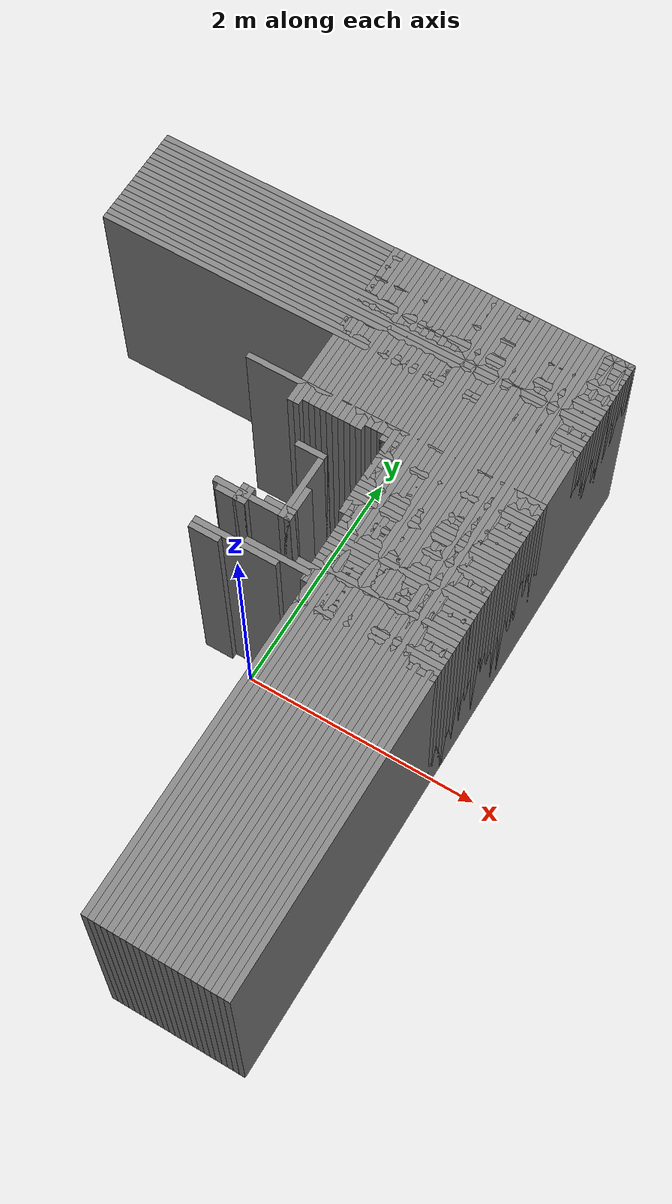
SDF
<sdf version="1.6">
 <model name="maze_map">
  <static>true</static>
  <link name="wall_0">
   <pose>-0.41500000000000004 2.85 1.0 0 0 0</pose>
   <collision name="collision">
    <geometry><box><size>4.1000000000000005 0.05 2.0</size></box></geometry>
   </collision>
   <visual name="visual">
    <geometry><box><size>4.1000000000000005 0.05 2.0</size></box></geometry>
    <material><ambient>0.3 0.3 0.3 1</ambient><diffuse>0.5 0.5 0.5 1</diffuse></material>
   </visual>
  </link>
  <link name="wall_1">
   <pose>-0.41500000000000004 2.8000000000000003 1.0 0 0 0</pose>
   <collision name="collision">
    <geometry><box><size>4.1000000000000005 0.05 2.0</size></box></geometry>
   </collision>
   <visual name="visual">
    <geometry><box><size>4.1000000000000005 0.05 2.0</size></box></geometry>
    <material><ambient>0.3 0.3 0.3 1</ambient><diffuse>0.5 0.5 0.5 1</diffuse></material>
   </visual>
  </link>
  <link name="wall_2">
   <pose>-0.41500000000000004 2.7500000000000004 1.0 0 0 0</pose>
   <collision name="collision">
    <geometry><box><size>4.1000000000000005 0.05 2.0</size></box></geometry>
   </collision>
   <visual name="visual">
    <geometry><box><size>4.1000000000000005 0.05 2.0</size></box></geometry>
    <material><ambient>0.3 0.3 0.3 1</ambient><diffuse>0.5 0.5 0.5 1</diffuse></material>
   </visual>
  </link>
  <link name="wall_3">
   <pose>-0.41500000000000004 2.7000000000000006 1.0 0 0 0</pose>
   <collision name="collision">
    <geometry><box><size>4.1000000000000005 0.05 2.0</size></box></geometry>
   </collision>
   <visual name="visual">
    <geometry><box><size>4.1000000000000005 0.05 2.0</size></box></geometry>
    <material><ambient>0.3 0.3 0.3 1</ambient><diffuse>0.5 0.5 0.5 1</diffuse></material>
   </visual>
  </link>
  <link name="wall_4">
   <pose>-0.41500000000000004 2.650000000000001 1.0 0 0 0</pose>
   <collision name="collision">
    <geometry><box><size>4.1000000000000005 0.05 2.0</size></box></geometry>
   </collision>
   <visual name="visual">
    <geometry><box><size>4.1000000000000005 0.05 2.0</size></box></geometry>
    <material><ambient>0.3 0.3 0.3 1</ambient><diffuse>0.5 0.5 0.5 1</diffuse></material>
   </visual>
  </link>
  <link name="wall_5">
   <pose>-0.41500000000000004 2.6 1.0 0 0 0</pose>
   <collision name="collision">
    <geometry><box><size>4.1000000000000005 0.05 2.0</size></box></geometry>
   </collision>
   <visual name="visual">
    <geometry><box><size>4.1000000000000005 0.05 2.0</size></box></geometry>
    <material><ambient>0.3 0.3 0.3 1</ambient><diffuse>0.5 0.5 0.5 1</diffuse></material>
   </visual>
  </link>
  <link name="wall_6">
   <pose>-0.41500000000000004 2.5500000000000003 1.0 0 0 0</pose>
   <collision name="collision">
    <geometry><box><size>4.1000000000000005 0.05 2.0</size></box></geometry>
   </collision>
   <visual name="visual">
    <geometry><box><size>4.1000000000000005 0.05 2.0</size></box></geometry>
    <material><ambient>0.3 0.3 0.3 1</ambient><diffuse>0.5 0.5 0.5 1</diffuse></material>
   </visual>
  </link>
  <link name="wall_7">
   <pose>-0.41500000000000004 2.5000000000000004 1.0 0 0 0</pose>
   <collision name="collision">
    <geometry><box><size>4.1000000000000005 0.05 2.0</size></box></geometry>
   </collision>
   <visual name="visual">
    <geometry><box><size>4.1000000000000005 0.05 2.0</size></box></geometry>
    <material><ambient>0.3 0.3 0.3 1</ambient><diffuse>0.5 0.5 0.5 1</diffuse></material>
   </visual>
  </link>
  <link name="wall_8">
   <pose>-0.41500000000000004 2.4500000000000006 1.0 0 0 0</pose>
   <collision name="collision">
    <geometry><box><size>4.1000000000000005 0.05 2.0</size></box></geometry>
   </collision>
   <visual name="visual">
    <geometry><box><size>4.1000000000000005 0.05 2.0</size></box></geometry>
    <material><ambient>0.3 0.3 0.3 1</ambient><diffuse>0.5 0.5 0.5 1</diffuse></material>
   </visual>
  </link>
  <link name="wall_9">
   <pose>-0.41500000000000004 2.400000000000001 1.0 0 0 0</pose>
   <collision name="collision">
    <geometry><box><size>4.1000000000000005 0.05 2.0</size></box></geometry>
   </collision>
   <visual name="visual">
    <geometry><box><size>4.1000000000000005 0.05 2.0</size></box></geometry>
    <material><ambient>0.3 0.3 0.3 1</ambient><diffuse>0.5 0.5 0.5 1</diffuse></material>
   </visual>
  </link>
  <link name="wall_10">
   <pose>-0.41500000000000004 2.35 1.0 0 0 0</pose>
   <collision name="collision">
    <geometry><box><size>4.1000000000000005 0.05 2.0</size></box></geometry>
   </collision>
   <visual name="visual">
    <geometry><box><size>4.1000000000000005 0.05 2.0</size></box></geometry>
    <material><ambient>0.3 0.3 0.3 1</ambient><diffuse>0.5 0.5 0.5 1</diffuse></material>
   </visual>
  </link>
  <link name="wall_11">
   <pose>-0.41500000000000004 2.3000000000000003 1.0 0 0 0</pose>
   <collision name="collision">
    <geometry><box><size>4.1000000000000005 0.05 2.0</size></box></geometry>
   </collision>
   <visual name="visual">
    <geometry><box><size>4.1000000000000005 0.05 2.0</size></box></geometry>
    <material><ambient>0.3 0.3 0.3 1</ambient><diffuse>0.5 0.5 0.5 1</diffuse></material>
   </visual>
  </link>
  <link name="wall_12">
   <pose>-0.41500000000000004 2.2500000000000004 1.0 0 0 0</pose>
   <collision name="collision">
    <geometry><box><size>4.1000000000000005 0.05 2.0</size></box></geometry>
   </collision>
   <visual name="visual">
    <geometry><box><size>4.1000000000000005 0.05 2.0</size></box></geometry>
    <material><ambient>0.3 0.3 0.3 1</ambient><diffuse>0.5 0.5 0.5 1</diffuse></material>
   </visual>
  </link>
  <link name="wall_13">
   <pose>-0.41500000000000004 2.2000000000000006 1.0 0 0 0</pose>
   <collision name="collision">
    <geometry><box><size>4.1000000000000005 0.05 2.0</size></box></geometry>
   </collision>
   <visual name="visual">
    <geometry><box><size>4.1000000000000005 0.05 2.0</size></box></geometry>
    <material><ambient>0.3 0.3 0.3 1</ambient><diffuse>0.5 0.5 0.5 1</diffuse></material>
   </visual>
  </link>
  <link name="wall_14">
   <pose>-0.41500000000000004 2.150000000000001 1.0 0 0 0</pose>
   <collision name="collision">
    <geometry><box><size>4.1000000000000005 0.05 2.0</size></box></geometry>
   </collision>
   <visual name="visual">
    <geometry><box><size>4.1000000000000005 0.05 2.0</size></box></geometry>
    <material><ambient>0.3 0.3 0.3 1</ambient><diffuse>0.5 0.5 0.5 1</diffuse></material>
   </visual>
  </link>
  <link name="wall_15">
   <pose>-0.41500000000000004 2.1 1.0 0 0 0</pose>
   <collision name="collision">
    <geometry><box><size>4.1000000000000005 0.05 2.0</size></box></geometry>
   </collision>
   <visual name="visual">
    <geometry><box><size>4.1000000000000005 0.05 2.0</size></box></geometry>
    <material><ambient>0.3 0.3 0.3 1</ambient><diffuse>0.5 0.5 0.5 1</diffuse></material>
   </visual>
  </link>
  <link name="wall_16">
   <pose>-0.41500000000000004 2.0500000000000003 1.0 0 0 0</pose>
   <collision name="collision">
    <geometry><box><size>4.1000000000000005 0.05 2.0</size></box></geometry>
   </collision>
   <visual name="visual">
    <geometry><box><size>4.1000000000000005 0.05 2.0</size></box></geometry>
    <material><ambient>0.3 0.3 0.3 1</ambient><diffuse>0.5 0.5 0.5 1</diffuse></material>
   </visual>
  </link>
  <link name="wall_17">
   <pose>-0.41500000000000004 2.0000000000000004 1.0 0 0 0</pose>
   <collision name="collision">
    <geometry><box><size>4.1000000000000005 0.05 2.0</size></box></geometry>
   </collision>
   <visual name="visual">
    <geometry><box><size>4.1000000000000005 0.05 2.0</size></box></geometry>
    <material><ambient>0.3 0.3 0.3 1</ambient><diffuse>0.5 0.5 0.5 1</diffuse></material>
   </visual>
  </link>
  <link name="wall_28">
   <pose>0.38500000000000023 1.5000000000000004 1.0 0 0 0</pose>
   <collision name="collision"><geometry><box><size>2.5 0.05 2.0</size></box></geometry></collision>
   <visual name="visual">
    <geometry><box><size>2.5 0.05 2.0</size></box></geometry>
    <material><ambient>0.3 0.3 0.3 1</ambient><diffuse>0.5 0.5 0.5 1</diffuse></material>
   </visual>
  </link>
  <link name="wall_31">
   <pose>0.9850000000000003 1.4 1.0 0 0 0</pose>
   <collision name="collision"><geometry><box><size>1.3 0.05 2.0</size></box></geometry></collision>
   <visual name="visual">
    <geometry><box><size>1.3 0.05 2.0</size></box></geometry>
    <material><ambient>0.3 0.3 0.3 1</ambient><diffuse>0.5 0.5 0.5 1</diffuse></material>
   </visual>
  </link>
  <link name="wall_34">
   <pose>1.0100000000000002 1.35 1.0 0 0 0</pose>
   <collision name="collision"><geometry><box><size>1.25 0.05 2.0</size></box></geometry></collision>
   <visual name="visual">
    <geometry><box><size>1.25 0.05 2.0</size></box></geometry>
    <material><ambient>0.3 0.3 0.3 1</ambient><diffuse>0.5 0.5 0.5 1</diffuse></material>
   </visual>
  </link>
  <link name="wall_36">
   <pose>1.0100000000000002 1.3000000000000003 1.0 0 0 0</pose>
   <collision name="collision"><geometry><box><size>1.25 0.05 2.0</size></box></geometry></collision>
   <visual name="visual">
    <geometry><box><size>1.25 0.05 2.0</size></box></geometry>
    <material><ambient>0.3 0.3 0.3 1</ambient><diffuse>0.5 0.5 0.5 1</diffuse></material>
   </visual>
  </link>
  <link name="wall_38">
   <pose>1.0100000000000002 1.2500000000000004 1.0 0 0 0</pose>
   <collision name="collision"><geometry><box><size>1.25 0.05 2.0</size></box></geometry></collision>
   <visual name="visual">
    <geometry><box><size>1.25 0.05 2.0</size></box></geometry>
    <material><ambient>0.3 0.3 0.3 1</ambient><diffuse>0.5 0.5 0.5 1</diffuse></material>
   </visual>
  </link>
  <link name="wall_40">
   <pose>1.0100000000000002 1.2000000000000002 1.0 0 0 0</pose>
   <collision name="collision"><geometry><box><size>1.25 0.05 2.0</size></box></geometry></collision>
   <visual name="visual">
    <geometry><box><size>1.25 0.05 2.0</size></box></geometry>
    <material><ambient>0.3 0.3 0.3 1</ambient><diffuse>0.5 0.5 0.5 1</diffuse></material>
   </visual>
  </link>
  <link name="wall_42">
   <pose>1.0100000000000002 1.1500000000000004 1.0 0 0 0</pose>
   <collision name="collision"><geometry><box><size>1.25 0.05 2.0</size></box></geometry></collision>
   <visual name="visual">
    <geometry><box><size>1.25 0.05 2.0</size></box></geometry>
    <material><ambient>0.3 0.3 0.3 1</ambient><diffuse>0.5 0.5 0.5 1</diffuse></material>
   </visual>
  </link>
  <link name="wall_44">
   <pose>1.0100000000000002 1.1 1.0 0 0 0</pose>
   <collision name="collision"><geometry><box><size>1.25 0.05 2.0</size></box></geometry></collision>
   <visual name="visual">
    <geometry><box><size>1.25 0.05 2.0</size></box></geometry>
    <material><ambient>0.3 0.3 0.3 1</ambient><diffuse>0.5 0.5 0.5 1</diffuse></material>
   </visual>
  </link>
  <link name="wall_46">
   <pose>-0.03999999999999959 1.0500000000000003 1.0 0 0 0</pose>
   <collision name="collision"><geometry><box><size>0.25 0.05 2.0</size></box></geometry></collision>
   <visual name="visual">
    <geometry><box><size>0.25 0.05 2.0</size></box></geometry>
    <material><ambient>0.3 0.3 0.3 1</ambient><diffuse>0.5 0.5 0.5 1</diffuse></material>
   </visual>
  </link>
  <link name="wall_47">
   <pose>1.0100000000000002 1.0500000000000003 1.0 0 0 0</pose>
   <collision name="collision"><geometry><box><size>1.25 0.05 2.0</size></box></geometry></collision>
   <visual name="visual">
    <geometry><box><size>1.25 0.05 2.0</size></box></geometry>
    <material><ambient>0.3 0.3 0.3 1</ambient><diffuse>0.5 0.5 0.5 1</diffuse></material>
   </visual>
  </link>
  <link name="wall_49">
   <pose>1.0100000000000002 1.0000000000000004 1.0 0 0 0</pose>
   <collision name="collision"><geometry><box><size>1.25 0.05 2.0</size></box></geometry></collision>
   <visual name="visual">
    <geometry><box><size>1.25 0.05 2.0</size></box></geometry>
    <material><ambient>0.3 0.3 0.3 1</ambient><diffuse>0.5 0.5 0.5 1</diffuse></material>
   </visual>
  </link>
  <link name="wall_51">
   <pose>1.0100000000000002 0.9500000000000002 1.0 0 0 0</pose>
   <collision name="collision"><geometry><box><size>1.25 0.05 2.0</size></box></geometry></collision>
   <visual name="visual">
    <geometry><box><size>1.25 0.05 2.0</size></box></geometry>
    <material><ambient>0.3 0.3 0.3 1</ambient><diffuse>0.5 0.5 0.5 1</diffuse></material>
   </visual>
  </link>
  <link name="wall_53">
   <pose>1.0100000000000002 0.9000000000000004 1.0 0 0 0</pose>
   <collision name="collision"><geometry><box><size>1.25 0.05 2.0</size></box></geometry></collision>
   <visual name="visual">
    <geometry><box><size>1.25 0.05 2.0</size></box></geometry>
    <material><ambient>0.3 0.3 0.3 1</ambient><diffuse>0.5 0.5 0.5 1</diffuse></material>
   </visual>
  </link>
  <link name="wall_56">
   <pose>1.0100000000000002 0.8500000000000001 1.0 0 0 0</pose>
   <collision name="collision"><geometry><box><size>1.25 0.05 2.0</size></box></geometry></collision>
   <visual name="visual">
    <geometry><box><size>1.25 0.05 2.0</size></box></geometry>
    <material><ambient>0.3 0.3 0.3 1</ambient><diffuse>0.5 0.5 0.5 1</diffuse></material>
   </visual>
  </link>
  <link name="wall_59">
   <pose>1.0100000000000002 0.8000000000000003 1.0 0 0 0</pose>
   <collision name="collision"><geometry><box><size>1.25 0.05 2.0</size></box></geometry></collision>
   <visual name="visual">
    <geometry><box><size>1.25 0.05 2.0</size></box></geometry>
    <material><ambient>0.3 0.3 0.3 1</ambient><diffuse>0.5 0.5 0.5 1</diffuse></material>
   </visual>
  </link>
  <link name="wall_61">
   <pose>1.0100000000000002 0.7500000000000004 1.0 0 0 0</pose>
   <collision name="collision"><geometry><box><size>1.25 0.05 2.0</size></box></geometry></collision>
   <visual name="visual">
    <geometry><box><size>1.25 0.05 2.0</size></box></geometry>
    <material><ambient>0.3 0.3 0.3 1</ambient><diffuse>0.5 0.5 0.5 1</diffuse></material>
   </visual>
  </link>
  <link name="wall_63">
   <pose>1.0350000000000001 0.7000000000000002 1.0 0 0 0</pose>
   <collision name="collision">
    <geometry><box><size>1.2000000000000002 0.05 2.0</size></box></geometry>
   </collision>
   <visual name="visual">
    <geometry><box><size>1.2000000000000002 0.05 2.0</size></box></geometry>
    <material><ambient>0.3 0.3 0.3 1</ambient><diffuse>0.5 0.5 0.5 1</diffuse></material>
   </visual>
  </link>
  <link name="wall_65">
   <pose>1.0350000000000001 0.6500000000000004 1.0 0 0 0</pose>
   <collision name="collision">
    <geometry><box><size>1.2000000000000002 0.05 2.0</size></box></geometry>
   </collision>
   <visual name="visual">
    <geometry><box><size>1.2000000000000002 0.05 2.0</size></box></geometry>
    <material><ambient>0.3 0.3 0.3 1</ambient><diffuse>0.5 0.5 0.5 1</diffuse></material>
   </visual>
  </link>
  <link name="wall_67">
   <pose>1.0350000000000001 0.6000000000000001 1.0 0 0 0</pose>
   <collision name="collision">
    <geometry><box><size>1.2000000000000002 0.05 2.0</size></box></geometry>
   </collision>
   <visual name="visual">
    <geometry><box><size>1.2000000000000002 0.05 2.0</size></box></geometry>
    <material><ambient>0.3 0.3 0.3 1</ambient><diffuse>0.5 0.5 0.5 1</diffuse></material>
   </visual>
  </link>
  <link name="wall_69">
   <pose>0.010000000000000231 0.5500000000000003 1.0 0 0 0</pose>
   <collision name="collision"><geometry><box><size>0.25 0.05 2.0</size></box></geometry></collision>
   <visual name="visual">
    <geometry><box><size>0.25 0.05 2.0</size></box></geometry>
    <material><ambient>0.3 0.3 0.3 1</ambient><diffuse>0.5 0.5 0.5 1</diffuse></material>
   </visual>
  </link>
  <link name="wall_70">
   <pose>1.0350000000000001 0.5500000000000003 1.0 0 0 0</pose>
   <collision name="collision">
    <geometry><box><size>1.2000000000000002 0.05 2.0</size></box></geometry>
   </collision>
   <visual name="visual">
    <geometry><box><size>1.2000000000000002 0.05 2.0</size></box></geometry>
    <material><ambient>0.3 0.3 0.3 1</ambient><diffuse>0.5 0.5 0.5 1</diffuse></material>
   </visual>
  </link>
  <link name="wall_72">
   <pose>-0.18999999999999995 0.5000000000000004 1.0 0 0 0</pose>
   <collision name="collision"><geometry><box><size>0.65 0.05 2.0</size></box></geometry></collision>
   <visual name="visual">
    <geometry><box><size>0.65 0.05 2.0</size></box></geometry>
    <material><ambient>0.3 0.3 0.3 1</ambient><diffuse>0.5 0.5 0.5 1</diffuse></material>
   </visual>
  </link>
  <link name="wall_73">
   <pose>1.0350000000000001 0.5000000000000004 1.0 0 0 0</pose>
   <collision name="collision">
    <geometry><box><size>1.2000000000000002 0.05 2.0</size></box></geometry>
   </collision>
   <visual name="visual">
    <geometry><box><size>1.2000000000000002 0.05 2.0</size></box></geometry>
    <material><ambient>0.3 0.3 0.3 1</ambient><diffuse>0.5 0.5 0.5 1</diffuse></material>
   </visual>
  </link>
  <link name="wall_75">
   <pose>-0.33999999999999986 0.4500000000000002 1.0 0 0 0</pose>
   <collision name="collision"><geometry><box><size>0.25 0.05 2.0</size></box></geometry></collision>
   <visual name="visual">
    <geometry><box><size>0.25 0.05 2.0</size></box></geometry>
    <material><ambient>0.3 0.3 0.3 1</ambient><diffuse>0.5 0.5 0.5 1</diffuse></material>
   </visual>
  </link>
  <link name="wall_76">
   <pose>1.0350000000000001 0.4500000000000002 1.0 0 0 0</pose>
   <collision name="collision">
    <geometry><box><size>1.2000000000000002 0.05 2.0</size></box></geometry>
   </collision>
   <visual name="visual">
    <geometry><box><size>1.2000000000000002 0.05 2.0</size></box></geometry>
    <material><ambient>0.3 0.3 0.3 1</ambient><diffuse>0.5 0.5 0.5 1</diffuse></material>
   </visual>
  </link>
  <link name="wall_79">
   <pose>1.0350000000000001 0.40000000000000036 1.0 0 0 0</pose>
   <collision name="collision">
    <geometry><box><size>1.2000000000000002 0.05 2.0</size></box></geometry>
   </collision>
   <visual name="visual">
    <geometry><box><size>1.2000000000000002 0.05 2.0</size></box></geometry>
    <material><ambient>0.3 0.3 0.3 1</ambient><diffuse>0.5 0.5 0.5 1</diffuse></material>
   </visual>
  </link>
  <link name="wall_81">
   <pose>1.0350000000000001 0.3500000000000001 1.0 0 0 0</pose>
   <collision name="collision">
    <geometry><box><size>1.2000000000000002 0.05 2.0</size></box></geometry>
   </collision>
   <visual name="visual">
    <geometry><box><size>1.2000000000000002 0.05 2.0</size></box></geometry>
    <material><ambient>0.3 0.3 0.3 1</ambient><diffuse>0.5 0.5 0.5 1</diffuse></material>
   </visual>
  </link>
  <link name="wall_83">
   <pose>1.0350000000000001 0.30000000000000027 1.0 0 0 0</pose>
   <collision name="collision">
    <geometry><box><size>1.2000000000000002 0.05 2.0</size></box></geometry>
   </collision>
   <visual name="visual">
    <geometry><box><size>1.2000000000000002 0.05 2.0</size></box></geometry>
    <material><ambient>0.3 0.3 0.3 1</ambient><diffuse>0.5 0.5 0.5 1</diffuse></material>
   </visual>
  </link>
  <link name="wall_85">
   <pose>0.9850000000000003 0.25000000000000044 1.0 0 0 0</pose>
   <collision name="collision"><geometry><box><size>1.3 0.05 2.0</size></box></geometry></collision>
   <visual name="visual">
    <geometry><box><size>1.3 0.05 2.0</size></box></geometry>
    <material><ambient>0.3 0.3 0.3 1</ambient><diffuse>0.5 0.5 0.5 1</diffuse></material>
   </visual>
  </link>
  <link name="wall_87">
   <pose>0.7850000000000001 0.20000000000000018 1.0 0 0 0</pose>
   <collision name="collision">
    <geometry><box><size>1.7000000000000002 0.05 2.0</size></box></geometry>
   </collision>
   <visual name="visual">
    <geometry><box><size>1.7000000000000002 0.05 2.0</size></box></geometry>
    <material><ambient>0.3 0.3 0.3 1</ambient><diffuse>0.5 0.5 0.5 1</diffuse></material>
   </visual>
  </link>
  <link name="wall_89">
   <pose>-0.11499999999999977 0.15000000000000036 1.0 0 0 0</pose>
   <collision name="collision">
    <geometry><box><size>0.7000000000000001 0.05 2.0</size></box></geometry>
   </collision>
   <visual name="visual">
    <geometry><box><size>0.7000000000000001 0.05 2.0</size></box></geometry>
    <material><ambient>0.3 0.3 0.3 1</ambient><diffuse>0.5 0.5 0.5 1</diffuse></material>
   </visual>
  </link>
  <link name="wall_90">
   <pose>1.0350000000000001 0.15000000000000036 1.0 0 0 0</pose>
   <collision name="collision">
    <geometry><box><size>1.2000000000000002 0.05 2.0</size></box></geometry>
   </collision>
   <visual name="visual">
    <geometry><box><size>1.2000000000000002 0.05 2.0</size></box></geometry>
    <material><ambient>0.3 0.3 0.3 1</ambient><diffuse>0.5 0.5 0.5 1</diffuse></material>
   </visual>
  </link>
  <link name="wall_92">
   <pose>-0.33999999999999986 0.10000000000000009 1.0 0 0 0</pose>
   <collision name="collision"><geometry><box><size>0.25 0.05 2.0</size></box></geometry></collision>
   <visual name="visual">
    <geometry><box><size>0.25 0.05 2.0</size></box></geometry>
    <material><ambient>0.3 0.3 0.3 1</ambient><diffuse>0.5 0.5 0.5 1</diffuse></material>
   </visual>
  </link>
  <link name="wall_93">
   <pose>1.06 0.10000000000000009 1.0 0 0 0</pose>
   <collision name="collision">
    <geometry><box><size>1.1500000000000001 0.05 2.0</size></box></geometry>
   </collision>
   <visual name="visual">
    <geometry><box><size>1.1500000000000001 0.05 2.0</size></box></geometry>
    <material><ambient>0.3 0.3 0.3 1</ambient><diffuse>0.5 0.5 0.5 1</diffuse></material>
   </visual>
  </link>
  <link name="wall_95">
   <pose>1.06 0.050000000000000266 1.0 0 0 0</pose>
   <collision name="collision">
    <geometry><box><size>1.1500000000000001 0.05 2.0</size></box></geometry>
   </collision>
   <visual name="visual">
    <geometry><box><size>1.1500000000000001 0.05 2.0</size></box></geometry>
    <material><ambient>0.3 0.3 0.3 1</ambient><diffuse>0.5 0.5 0.5 1</diffuse></material>
   </visual>
  </link>
  <link name="wall_97">
   <pose>1.06 4.440892098500626e-16 1.0 0 0 0</pose>
   <collision name="collision">
    <geometry><box><size>1.1500000000000001 0.05 2.0</size></box></geometry>
   </collision>
   <visual name="visual">
    <geometry><box><size>1.1500000000000001 0.05 2.0</size></box></geometry>
    <material><ambient>0.3 0.3 0.3 1</ambient><diffuse>0.5 0.5 0.5 1</diffuse></material>
   </visual>
  </link>
  <link name="wall_99">
   <pose>1.06 -0.04999999999999982 1.0 0 0 0</pose>
   <collision name="collision">
    <geometry><box><size>1.1500000000000001 0.05 2.0</size></box></geometry>
   </collision>
   <visual name="visual">
    <geometry><box><size>1.1500000000000001 0.05 2.0</size></box></geometry>
    <material><ambient>0.3 0.3 0.3 1</ambient><diffuse>0.5 0.5 0.5 1</diffuse></material>
   </visual>
  </link>
  <link name="wall_242">
   <pose>-0.3899999999999997 2.1 1.0 0 0 0</pose>
   <collision name="collision"><geometry><box><size>0.05 1.55 2.0</size></box></geometry></collision>
   <visual name="visual">
    <geometry><box><size>0.05 1.55 2.0</size></box></geometry>
    <material><ambient>0.3 0.3 0.3 1</ambient><diffuse>0.5 0.5 0.5 1</diffuse></material>
   </visual>
  </link>
  <link name="wall_244">
   <pose>-0.33999999999999986 2.1 1.0 0 0 0</pose>
   <collision name="collision"><geometry><box><size>0.05 1.55 2.0</size></box></geometry></collision>
   <visual name="visual">
    <geometry><box><size>0.05 1.55 2.0</size></box></geometry>
    <material><ambient>0.3 0.3 0.3 1</ambient><diffuse>0.5 0.5 0.5 1</diffuse></material>
   </visual>
  </link>
  <link name="wall_246">
   <pose>-0.29000000000000004 2.1250000000000004 1.0 0 0 0</pose>
   <collision name="collision"><geometry><box><size>0.05 1.5 2.0</size></box></geometry></collision>
   <visual name="visual">
    <geometry><box><size>0.05 1.5 2.0</size></box></geometry>
    <material><ambient>0.3 0.3 0.3 1</ambient><diffuse>0.5 0.5 0.5 1</diffuse></material>
   </visual>
  </link>
  <link name="wall_247">
   <pose>-0.29000000000000004 0.5000000000000004 1.0 0 0 0</pose>
   <collision name="collision">
    <geometry><box><size>0.05 0.15000000000000002 2.0</size></box></geometry>
   </collision>
   <visual name="visual">
    <geometry><box><size>0.05 0.15000000000000002 2.0</size></box></geometry>
    <material><ambient>0.3 0.3 0.3 1</ambient><diffuse>0.5 0.5 0.5 1</diffuse></material>
   </visual>
  </link>
  <link name="wall_249">
   <pose>-0.23999999999999977 2.1250000000000004 1.0 0 0 0</pose>
   <collision name="collision"><geometry><box><size>0.05 1.5 2.0</size></box></geometry></collision>
   <visual name="visual">
    <geometry><box><size>0.05 1.5 2.0</size></box></geometry>
    <material><ambient>0.3 0.3 0.3 1</ambient><diffuse>0.5 0.5 0.5 1</diffuse></material>
   </visual>
  </link>
  <link name="wall_250">
   <pose>-0.23999999999999977 0.5000000000000004 1.0 0 0 0</pose>
   <collision name="collision">
    <geometry><box><size>0.05 0.15000000000000002 2.0</size></box></geometry>
   </collision>
   <visual name="visual">
    <geometry><box><size>0.05 0.15000000000000002 2.0</size></box></geometry>
    <material><ambient>0.3 0.3 0.3 1</ambient><diffuse>0.5 0.5 0.5 1</diffuse></material>
   </visual>
  </link>
  <link name="wall_252">
   <pose>-0.18999999999999995 2.1250000000000004 1.0 0 0 0</pose>
   <collision name="collision"><geometry><box><size>0.05 1.5 2.0</size></box></geometry></collision>
   <visual name="visual">
    <geometry><box><size>0.05 1.5 2.0</size></box></geometry>
    <material><ambient>0.3 0.3 0.3 1</ambient><diffuse>0.5 0.5 0.5 1</diffuse></material>
   </visual>
  </link>
  <link name="wall_254">
   <pose>-0.13999999999999968 2.1250000000000004 1.0 0 0 0</pose>
   <collision name="collision"><geometry><box><size>0.05 1.5 2.0</size></box></geometry></collision>
   <visual name="visual">
    <geometry><box><size>0.05 1.5 2.0</size></box></geometry>
    <material><ambient>0.3 0.3 0.3 1</ambient><diffuse>0.5 0.5 0.5 1</diffuse></material>
   </visual>
  </link>
  <link name="wall_256">
   <pose>-0.08999999999999986 2.1250000000000004 1.0 0 0 0</pose>
   <collision name="collision"><geometry><box><size>0.05 1.5 2.0</size></box></geometry></collision>
   <visual name="visual">
    <geometry><box><size>0.05 1.5 2.0</size></box></geometry>
    <material><ambient>0.3 0.3 0.3 1</ambient><diffuse>0.5 0.5 0.5 1</diffuse></material>
   </visual>
  </link>
  <link name="wall_258">
   <pose>-0.03999999999999959 2.1250000000000004 1.0 0 0 0</pose>
   <collision name="collision"><geometry><box><size>0.05 1.5 2.0</size></box></geometry></collision>
   <visual name="visual">
    <geometry><box><size>0.05 1.5 2.0</size></box></geometry>
    <material><ambient>0.3 0.3 0.3 1</ambient><diffuse>0.5 0.5 0.5 1</diffuse></material>
   </visual>
  </link>
  <link name="wall_260">
   <pose>0.010000000000000231 2.1250000000000004 1.0 0 0 0</pose>
   <collision name="collision"><geometry><box><size>0.05 1.5 2.0</size></box></geometry></collision>
   <visual name="visual">
    <geometry><box><size>0.05 1.5 2.0</size></box></geometry>
    <material><ambient>0.3 0.3 0.3 1</ambient><diffuse>0.5 0.5 0.5 1</diffuse></material>
   </visual>
  </link>
  <link name="wall_262">
   <pose>0.06000000000000005 2.1250000000000004 1.0 0 0 0</pose>
   <collision name="collision"><geometry><box><size>0.05 1.5 2.0</size></box></geometry></collision>
   <visual name="visual">
    <geometry><box><size>0.05 1.5 2.0</size></box></geometry>
    <material><ambient>0.3 0.3 0.3 1</ambient><diffuse>0.5 0.5 0.5 1</diffuse></material>
   </visual>
  </link>
  <link name="wall_263">
   <pose>0.06000000000000005 0.7750000000000004 1.0 0 0 0</pose>
   <collision name="collision">
    <geometry><box><size>0.05 0.6000000000000001 2.0</size></box></geometry>
   </collision>
   <visual name="visual">
    <geometry><box><size>0.05 0.6000000000000001 2.0</size></box></geometry>
    <material><ambient>0.3 0.3 0.3 1</ambient><diffuse>0.5 0.5 0.5 1</diffuse></material>
   </visual>
  </link>
  <link name="wall_265">
   <pose>0.11000000000000032 2.1250000000000004 1.0 0 0 0</pose>
   <collision name="collision"><geometry><box><size>0.05 1.5 2.0</size></box></geometry></collision>
   <visual name="visual">
    <geometry><box><size>0.05 1.5 2.0</size></box></geometry>
    <material><ambient>0.3 0.3 0.3 1</ambient><diffuse>0.5 0.5 0.5 1</diffuse></material>
   </visual>
  </link>
  <link name="wall_266">
   <pose>0.11000000000000032 0.6250000000000004 1.0 0 0 0</pose>
   <collision name="collision">
    <geometry><box><size>0.05 0.30000000000000004 2.0</size></box></geometry>
   </collision>
   <visual name="visual">
    <geometry><box><size>0.05 0.30000000000000004 2.0</size></box></geometry>
    <material><ambient>0.3 0.3 0.3 1</ambient><diffuse>0.5 0.5 0.5 1</diffuse></material>
   </visual>
  </link>
  <link name="wall_268">
   <pose>0.16000000000000014 2.1250000000000004 1.0 0 0 0</pose>
   <collision name="collision"><geometry><box><size>0.05 1.5 2.0</size></box></geometry></collision>
   <visual name="visual">
    <geometry><box><size>0.05 1.5 2.0</size></box></geometry>
    <material><ambient>0.3 0.3 0.3 1</ambient><diffuse>0.5 0.5 0.5 1</diffuse></material>
   </visual>
  </link>
  <link name="wall_270">
   <pose>0.2100000000000004 2.150000000000001 1.0 0 0 0</pose>
   <collision name="collision">
    <geometry><box><size>0.05 1.4500000000000002 2.0</size></box></geometry>
   </collision>
   <visual name="visual">
    <geometry><box><size>0.05 1.4500000000000002 2.0</size></box></geometry>
    <material><ambient>0.3 0.3 0.3 1</ambient><diffuse>0.5 0.5 0.5 1</diffuse></material>
   </visual>
  </link>
  <link name="wall_272">
   <pose>0.26000000000000023 2.150000000000001 1.0 0 0 0</pose>
   <collision name="collision">
    <geometry><box><size>0.05 1.4500000000000002 2.0</size></box></geometry>
   </collision>
   <visual name="visual">
    <geometry><box><size>0.05 1.4500000000000002 2.0</size></box></geometry>
    <material><ambient>0.3 0.3 0.3 1</ambient><diffuse>0.5 0.5 0.5 1</diffuse></material>
   </visual>
  </link>
  <link name="wall_274">
   <pose>0.31000000000000005 2.150000000000001 1.0 0 0 0</pose>
   <collision name="collision">
    <geometry><box><size>0.05 1.4500000000000002 2.0</size></box></geometry>
   </collision>
   <visual name="visual">
    <geometry><box><size>0.05 1.4500000000000002 2.0</size></box></geometry>
    <material><ambient>0.3 0.3 0.3 1</ambient><diffuse>0.5 0.5 0.5 1</diffuse></material>
   </visual>
  </link>
  <link name="wall_276">
   <pose>0.3600000000000003 2.1250000000000004 1.0 0 0 0</pose>
   <collision name="collision"><geometry><box><size>0.05 1.5 2.0</size></box></geometry></collision>
   <visual name="visual">
    <geometry><box><size>0.05 1.5 2.0</size></box></geometry>
    <material><ambient>0.3 0.3 0.3 1</ambient><diffuse>0.5 0.5 0.5 1</diffuse></material>
   </visual>
  </link>
  <link name="wall_278">
   <pose>0.41000000000000014 1.8000000000000003 1.0 0 0 0</pose>
   <collision name="collision"><geometry><box><size>0.05 2.15 2.0</size></box></geometry></collision>
   <visual name="visual">
    <geometry><box><size>0.05 2.15 2.0</size></box></geometry>
    <material><ambient>0.3 0.3 0.3 1</ambient><diffuse>0.5 0.5 0.5 1</diffuse></material>
   </visual>
  </link>
  <link name="wall_280">
   <pose>0.4600000000000004 1.5000000000000004 1.0 0 0 0</pose>
   <collision name="collision"><geometry><box><size>0.05 2.75 2.0</size></box></geometry></collision>
   <visual name="visual">
    <geometry><box><size>0.05 2.75 2.0</size></box></geometry>
    <material><ambient>0.3 0.3 0.3 1</ambient><diffuse>0.5 0.5 0.5 1</diffuse></material>
   </visual>
  </link>
  <link name="wall_282">
   <pose>0.5100000000000002 0.10000000000000009 1.0 0 0 0</pose>
   <collision name="collision">
    <geometry><box><size>0.05 5.550000000000001 2.0</size></box></geometry>
   </collision>
   <visual name="visual">
    <geometry><box><size>0.05 5.550000000000001 2.0</size></box></geometry>
    <material><ambient>0.3 0.3 0.3 1</ambient><diffuse>0.5 0.5 0.5 1</diffuse></material>
   </visual>
  </link>
  <link name="wall_283">
   <pose>0.56 0.10000000000000009 1.0 0 0 0</pose>
   <collision name="collision">
    <geometry><box><size>0.05 5.550000000000001 2.0</size></box></geometry>
   </collision>
   <visual name="visual">
    <geometry><box><size>0.05 5.550000000000001 2.0</size></box></geometry>
    <material><ambient>0.3 0.3 0.3 1</ambient><diffuse>0.5 0.5 0.5 1</diffuse></material>
   </visual>
  </link>
  <link name="wall_284">
   <pose>0.6100000000000003 0.10000000000000009 1.0 0 0 0</pose>
   <collision name="collision">
    <geometry><box><size>0.05 5.550000000000001 2.0</size></box></geometry>
   </collision>
   <visual name="visual">
    <geometry><box><size>0.05 5.550000000000001 2.0</size></box></geometry>
    <material><ambient>0.3 0.3 0.3 1</ambient><diffuse>0.5 0.5 0.5 1</diffuse></material>
   </visual>
  </link>
  <link name="wall_285">
   <pose>0.6600000000000001 0.10000000000000009 1.0 0 0 0</pose>
   <collision name="collision">
    <geometry><box><size>0.05 5.550000000000001 2.0</size></box></geometry>
   </collision>
   <visual name="visual">
    <geometry><box><size>0.05 5.550000000000001 2.0</size></box></geometry>
    <material><ambient>0.3 0.3 0.3 1</ambient><diffuse>0.5 0.5 0.5 1</diffuse></material>
   </visual>
  </link>
  <link name="wall_286">
   <pose>0.7100000000000004 0.10000000000000009 1.0 0 0 0</pose>
   <collision name="collision">
    <geometry><box><size>0.05 5.550000000000001 2.0</size></box></geometry>
   </collision>
   <visual name="visual">
    <geometry><box><size>0.05 5.550000000000001 2.0</size></box></geometry>
    <material><ambient>0.3 0.3 0.3 1</ambient><diffuse>0.5 0.5 0.5 1</diffuse></material>
   </visual>
  </link>
  <link name="wall_287">
   <pose>0.7600000000000002 0.10000000000000009 1.0 0 0 0</pose>
   <collision name="collision">
    <geometry><box><size>0.05 5.550000000000001 2.0</size></box></geometry>
   </collision>
   <visual name="visual">
    <geometry><box><size>0.05 5.550000000000001 2.0</size></box></geometry>
    <material><ambient>0.3 0.3 0.3 1</ambient><diffuse>0.5 0.5 0.5 1</diffuse></material>
   </visual>
  </link>
  <link name="wall_288">
   <pose>0.81 0.10000000000000009 1.0 0 0 0</pose>
   <collision name="collision">
    <geometry><box><size>0.05 5.550000000000001 2.0</size></box></geometry>
   </collision>
   <visual name="visual">
    <geometry><box><size>0.05 5.550000000000001 2.0</size></box></geometry>
    <material><ambient>0.3 0.3 0.3 1</ambient><diffuse>0.5 0.5 0.5 1</diffuse></material>
   </visual>
  </link>
  <link name="wall_289">
   <pose>0.8600000000000003 0.10000000000000009 1.0 0 0 0</pose>
   <collision name="collision">
    <geometry><box><size>0.05 5.550000000000001 2.0</size></box></geometry>
   </collision>
   <visual name="visual">
    <geometry><box><size>0.05 5.550000000000001 2.0</size></box></geometry>
    <material><ambient>0.3 0.3 0.3 1</ambient><diffuse>0.5 0.5 0.5 1</diffuse></material>
   </visual>
  </link>
  <link name="wall_290">
   <pose>0.9100000000000001 0.10000000000000009 1.0 0 0 0</pose>
   <collision name="collision">
    <geometry><box><size>0.05 5.550000000000001 2.0</size></box></geometry>
   </collision>
   <visual name="visual">
    <geometry><box><size>0.05 5.550000000000001 2.0</size></box></geometry>
    <material><ambient>0.3 0.3 0.3 1</ambient><diffuse>0.5 0.5 0.5 1</diffuse></material>
   </visual>
  </link>
  <link name="wall_291">
   <pose>0.9600000000000004 0.10000000000000009 1.0 0 0 0</pose>
   <collision name="collision">
    <geometry><box><size>0.05 5.550000000000001 2.0</size></box></geometry>
   </collision>
   <visual name="visual">
    <geometry><box><size>0.05 5.550000000000001 2.0</size></box></geometry>
    <material><ambient>0.3 0.3 0.3 1</ambient><diffuse>0.5 0.5 0.5 1</diffuse></material>
   </visual>
  </link>
  <link name="wall_292">
   <pose>1.0100000000000002 0.10000000000000009 1.0 0 0 0</pose>
   <collision name="collision">
    <geometry><box><size>0.05 5.550000000000001 2.0</size></box></geometry>
   </collision>
   <visual name="visual">
    <geometry><box><size>0.05 5.550000000000001 2.0</size></box></geometry>
    <material><ambient>0.3 0.3 0.3 1</ambient><diffuse>0.5 0.5 0.5 1</diffuse></material>
   </visual>
  </link>
  <link name="wall_293">
   <pose>1.06 0.10000000000000009 1.0 0 0 0</pose>
   <collision name="collision">
    <geometry><box><size>0.05 5.550000000000001 2.0</size></box></geometry>
   </collision>
   <visual name="visual">
    <geometry><box><size>0.05 5.550000000000001 2.0</size></box></geometry>
    <material><ambient>0.3 0.3 0.3 1</ambient><diffuse>0.5 0.5 0.5 1</diffuse></material>
   </visual>
  </link>
  <link name="wall_294">
   <pose>1.1100000000000003 0.10000000000000009 1.0 0 0 0</pose>
   <collision name="collision">
    <geometry><box><size>0.05 5.550000000000001 2.0</size></box></geometry>
   </collision>
   <visual name="visual">
    <geometry><box><size>0.05 5.550000000000001 2.0</size></box></geometry>
    <material><ambient>0.3 0.3 0.3 1</ambient><diffuse>0.5 0.5 0.5 1</diffuse></material>
   </visual>
  </link>
  <link name="wall_295">
   <pose>1.1600000000000001 0.10000000000000009 1.0 0 0 0</pose>
   <collision name="collision">
    <geometry><box><size>0.05 5.550000000000001 2.0</size></box></geometry>
   </collision>
   <visual name="visual">
    <geometry><box><size>0.05 5.550000000000001 2.0</size></box></geometry>
    <material><ambient>0.3 0.3 0.3 1</ambient><diffuse>0.5 0.5 0.5 1</diffuse></material>
   </visual>
  </link>
  <link name="wall_296">
   <pose>1.2100000000000004 0.10000000000000009 1.0 0 0 0</pose>
   <collision name="collision">
    <geometry><box><size>0.05 5.550000000000001 2.0</size></box></geometry>
   </collision>
   <visual name="visual">
    <geometry><box><size>0.05 5.550000000000001 2.0</size></box></geometry>
    <material><ambient>0.3 0.3 0.3 1</ambient><diffuse>0.5 0.5 0.5 1</diffuse></material>
   </visual>
  </link>
  <link name="wall_297">
   <pose>1.2600000000000002 0.10000000000000009 1.0 0 0 0</pose>
   <collision name="collision">
    <geometry><box><size>0.05 5.550000000000001 2.0</size></box></geometry>
   </collision>
   <visual name="visual">
    <geometry><box><size>0.05 5.550000000000001 2.0</size></box></geometry>
    <material><ambient>0.3 0.3 0.3 1</ambient><diffuse>0.5 0.5 0.5 1</diffuse></material>
   </visual>
  </link>
  <link name="wall_298">
   <pose>1.31 0.10000000000000009 1.0 0 0 0</pose>
   <collision name="collision">
    <geometry><box><size>0.05 5.550000000000001 2.0</size></box></geometry>
   </collision>
   <visual name="visual">
    <geometry><box><size>0.05 5.550000000000001 2.0</size></box></geometry>
    <material><ambient>0.3 0.3 0.3 1</ambient><diffuse>0.5 0.5 0.5 1</diffuse></material>
   </visual>
  </link>
  <link name="wall_299">
   <pose>1.3600000000000003 0.10000000000000009 1.0 0 0 0</pose>
   <collision name="collision">
    <geometry><box><size>0.05 5.550000000000001 2.0</size></box></geometry>
   </collision>
   <visual name="visual">
    <geometry><box><size>0.05 5.550000000000001 2.0</size></box></geometry>
    <material><ambient>0.3 0.3 0.3 1</ambient><diffuse>0.5 0.5 0.5 1</diffuse></material>
   </visual>
  </link>
  <link name="wall_300">
   <pose>1.4100000000000001 0.10000000000000009 1.0 0 0 0</pose>
   <collision name="collision">
    <geometry><box><size>0.05 5.550000000000001 2.0</size></box></geometry>
   </collision>
   <visual name="visual">
    <geometry><box><size>0.05 5.550000000000001 2.0</size></box></geometry>
    <material><ambient>0.3 0.3 0.3 1</ambient><diffuse>0.5 0.5 0.5 1</diffuse></material>
   </visual>
  </link>
  <link name="wall_301">
   <pose>1.4600000000000004 0.10000000000000009 1.0 0 0 0</pose>
   <collision name="collision">
    <geometry><box><size>0.05 5.550000000000001 2.0</size></box></geometry>
   </collision>
   <visual name="visual">
    <geometry><box><size>0.05 5.550000000000001 2.0</size></box></geometry>
    <material><ambient>0.3 0.3 0.3 1</ambient><diffuse>0.5 0.5 0.5 1</diffuse></material>
   </visual>
  </link>
  <link name="wall_302">
   <pose>1.5100000000000002 0.10000000000000009 1.0 0 0 0</pose>
   <collision name="collision">
    <geometry><box><size>0.05 5.550000000000001 2.0</size></box></geometry>
   </collision>
   <visual name="visual">
    <geometry><box><size>0.05 5.550000000000001 2.0</size></box></geometry>
    <material><ambient>0.3 0.3 0.3 1</ambient><diffuse>0.5 0.5 0.5 1</diffuse></material>
   </visual>
  </link>
  <link name="wall_303">
   <pose>1.56 0.10000000000000009 1.0 0 0 0</pose>
   <collision name="collision">
    <geometry><box><size>0.05 5.550000000000001 2.0</size></box></geometry>
   </collision>
   <visual name="visual">
    <geometry><box><size>0.05 5.550000000000001 2.0</size></box></geometry>
    <material><ambient>0.3 0.3 0.3 1</ambient><diffuse>0.5 0.5 0.5 1</diffuse></material>
   </visual>
  </link>
  <link name="wall_304">
   <pose>1.6099999999999999 0.10000000000000009 1.0 0 0 0</pose>
   <collision name="collision">
    <geometry><box><size>0.05 5.550000000000001 2.0</size></box></geometry>
   </collision>
   <visual name="visual">
    <geometry><box><size>0.05 5.550000000000001 2.0</size></box></geometry>
    <material><ambient>0.3 0.3 0.3 1</ambient><diffuse>0.5 0.5 0.5 1</diffuse></material>
   </visual>
  </link>
 </model>
</sdf>
